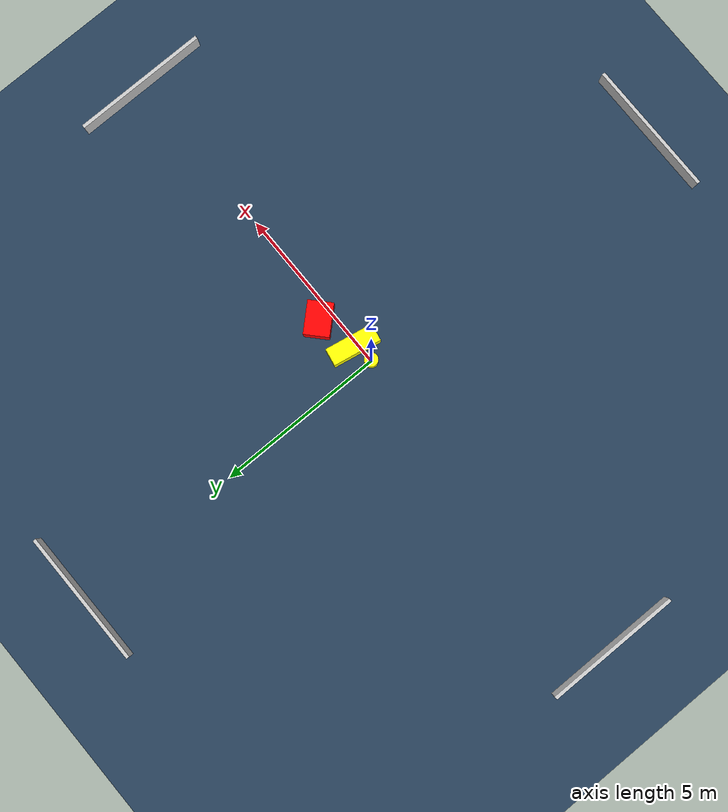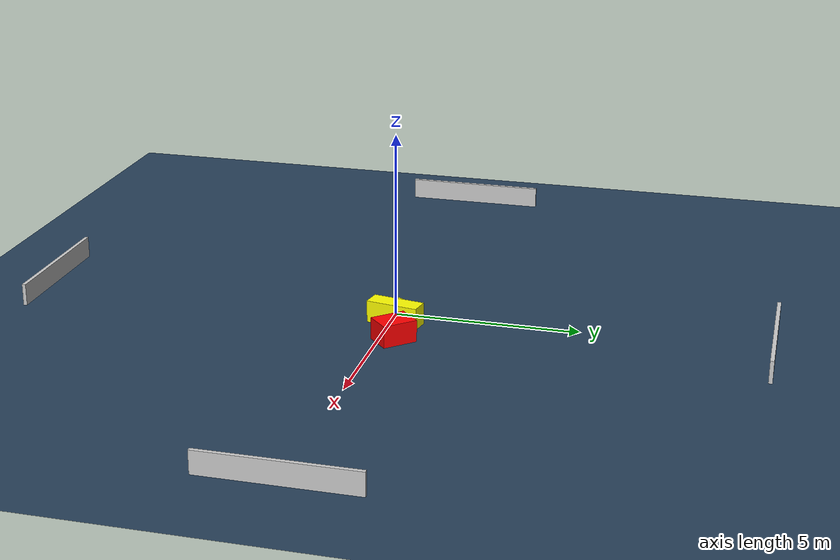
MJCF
<?xml version="1.0" ?>
<mujoco model="generated_environment">
  <option timestep="0.01" integrator="RK4" cone="elliptic"/>
  <default>
    <geom density="1"/>
  </default>
  <asset>
    <texture builtin="gradient" height="3072" name="skybox" rgb1="0.3 0.5 0.7" rgb2="0 0 0" type="skybox" width="512"/>
    <texture builtin="checker" height="300" name="groundplane" rgb1="0.2 0.3 0.4" rgb2="0.1 0.2 0.3" type="2d" width="300"/>
    <material name="groundplane" reflectance="0.2" texrepeat="5 5" texture="groundplane"/>
  </asset>
  <worldbody>
    <light dir="0 0 -1" directional="true" pos="0 0 1.5"/>
    <geom condim="3" friction="0.5 0.005 0.001" material="groundplane" name="floor" pos="0 0 0" size="0 0 0.05" type="plane"/>
    <body name="walls">
      <geom name="wall_1" condim="4" pos="-10.0 0.0 0.3" rgba="0.800000011920929 0.800000011920929 0.800000011920929 1.0" size="0.05 2.0 0.3" type="box"/>
      <geom name="wall_2" condim="4" pos="10.0 0.0 0.3" rgba="0.800000011920929 0.800000011920929 0.800000011920929 1.0" size="0.05 2.0 0.3" type="box"/>
      <geom name="wall_3" condim="4" pos="0.0 -10.0 0.3" rgba="0.800000011920929 0.800000011920929 0.800000011920929 1.0" size="2.0 0.05 0.3" type="box"/>
      <geom name="wall_4" condim="4" pos="0.0 10.0 0.3" rgba="0.800000011920929 0.800000011920929 0.800000011920929 1.0" size="2.0 0.05 0.3" type="box"/>
    </body>
    <body name="robot">
      <joint name="joint_x" type="slide" pos="0 0 0" axis="1 0 0"/>
      <joint name="joint_y" type="slide" pos="0 0 0" axis="0 1 0"/>
      <geom name="robot" type="cylinder" pos="0.0 0.0 0.2" size="0.2 0.2 0.0" mass="5.0" friction="1.0 0.005 0.0001" condim="4" rgba="1.0 1.0 0.0 1.0"/>
    </body>
    <body name="obstacle_1_movable">
      <geom name="obstacle_1_movable" condim="4" pos="0.6097252416321982 0.131791910519325 0.3" euler="0 0 259.46738092559883" friction="0.0 0.005 0.001" rgba="1.0 1.0 0.0 1.0" size="0.7155138509989079 0.25562472225792804 0.3" type="box" mass="0.1"/>
      <joint type="free"/>
    </body>
    <body name="obstacle_2_static">
      <geom name="obstacle_2_static" condim="4" pos="1.7606655394107047 0.3980736551486699 0.3" euler="0 0 223.01264923731011" friction="0.0 0.005 0.001" rgba="1.0 0.0 0.0 1.0" size="0.36554177482405364 0.4796149924265641 0.3" type="box"/>
    </body>
  </worldbody>
  <actuator>
    <motor name="actuator_x" joint="joint_x" gear="1" ctrlrange="-1 1"/>
    <motor name="actuator_y" joint="joint_y" gear="1" ctrlrange="-1 1"/>
  </actuator>
</mujoco>
